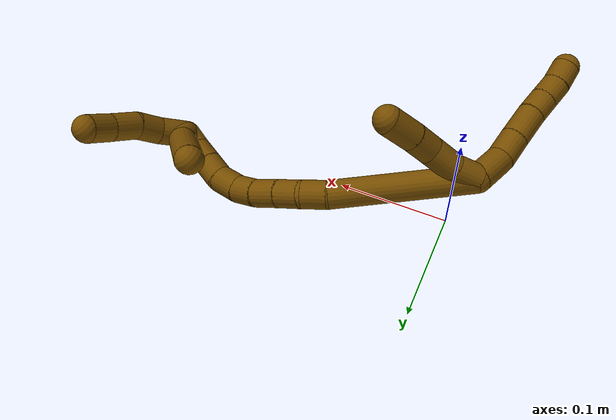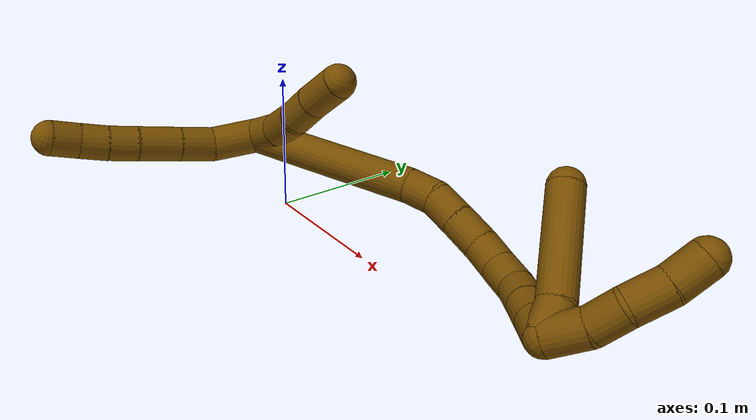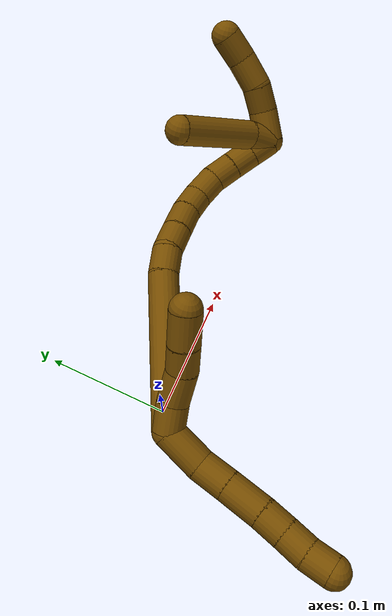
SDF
<sdf version="1.7">
 <world name="default">
  <model name="12">
   <static>0</static>
   <link name="12">
    <collision name="collision-cylinder-e_1_2_8">
     <pose>-0.003582 -0.015489 -0.005577 1.91642 -0.214246 -0.303673</pose>
     <geometry><cylinder><radius>0.0125</radius><length>0.033696</length></cylinder></geometry>
     <surface>
      <friction><ode><mu>1.16</mu><mu2>1.16</mu2><slip1>0</slip1><slip2>0</slip2></ode></friction>
      <contact><ode><kp>1e+06</kp><kd>1</kd><max_vel>0</max_vel><min_depth>0.001</min_depth></ode></contact>
     </surface>
    </collision>
    <visual name="visual-cylinder-e_1_2_8">
     <pose>-0.003582 -0.015489 -0.005577 1.91642 -0.214246 -0.303673</pose>
     <geometry><cylinder><radius>0.0125</radius><length>0.033696</length></cylinder></geometry>
     <material><ambient>0.466667 0.301961 0 1</ambient></material>
    </visual>
    <collision name="collision-cylinder-e_2_8_9">
     <pose>-0.010504 -0.043057 -0.011547 1.60328 -0.269605 -0.278393</pose>
     <geometry><cylinder><radius>0.0125</radius><length>0.025075</length></cylinder></geometry>
     <surface>
      <friction><ode><mu>1.16</mu><mu2>1.16</mu2><slip1>0</slip1><slip2>0</slip2></ode></friction>
      <contact><ode><kp>1e+06</kp><kd>1</kd><max_vel>0</max_vel><min_depth>0.001</min_depth></ode></contact>
     </surface>
    </collision>
    <visual name="visual-cylinder-e_2_8_9">
     <pose>-0.010504 -0.043057 -0.011547 1.60328 -0.269605 -0.278393</pose>
     <geometry><cylinder><radius>0.0125</radius><length>0.025075</length></cylinder></geometry>
     <material><ambient>0.466667 0.301961 0 1</ambient></material>
    </visual>
    <collision name="collision-cylinder-e_3_9_10">
     <pose>-0.01805 -0.069735 -0.012602 1.61616 -0.280252 -0.29308</pose>
     <geometry><cylinder><radius>0.0125</radius><length>0.030417</length></cylinder></geometry>
     <surface>
      <friction><ode><mu>1.16</mu><mu2>1.16</mu2><slip1>0</slip1><slip2>0</slip2></ode></friction>
      <contact><ode><kp>1e+06</kp><kd>1</kd><max_vel>0</max_vel><min_depth>0.001</min_depth></ode></contact>
     </surface>
    </collision>
    <visual name="visual-cylinder-e_3_9_10">
     <pose>-0.01805 -0.069735 -0.012602 1.61616 -0.280252 -0.29308</pose>
     <geometry><cylinder><radius>0.0125</radius><length>0.030417</length></cylinder></geometry>
     <material><ambient>0.466667 0.301961 0 1</ambient></material>
    </visual>
    <collision name="collision-cylinder-e_4_10_11">
     <pose>-0.025439 -0.09402 -0.014193 1.6663 -0.316143 -0.347269</pose>
     <geometry><cylinder><radius>0.0125</radius><length>0.020473</length></cylinder></geometry>
     <surface>
      <friction><ode><mu>1.16</mu><mu2>1.16</mu2><slip1>0</slip1><slip2>0</slip2></ode></friction>
      <contact><ode><kp>1e+06</kp><kd>1</kd><max_vel>0</max_vel><min_depth>0.001</min_depth></ode></contact>
     </surface>
    </collision>
    <visual name="visual-cylinder-e_4_10_11">
     <pose>-0.025439 -0.09402 -0.014193 1.6663 -0.316143 -0.347269</pose>
     <geometry><cylinder><radius>0.0125</radius><length>0.020473</length></cylinder></geometry>
     <material><ambient>0.466667 0.301961 0 1</ambient></material>
    </visual>
    <collision name="collision-cylinder-e_5_11_12">
     <pose>-0.032313 -0.113062 -0.015576 1.61945 -0.375388 -0.393643</pose>
     <geometry><cylinder><radius>0.0125</radius><length>0.020139</length></cylinder></geometry>
     <surface>
      <friction><ode><mu>1.16</mu><mu2>1.16</mu2><slip1>0</slip1><slip2>0</slip2></ode></friction>
      <contact><ode><kp>1e+06</kp><kd>1</kd><max_vel>0</max_vel><min_depth>0.001</min_depth></ode></contact>
     </surface>
    </collision>
    <visual name="visual-cylinder-e_5_11_12">
     <pose>-0.032313 -0.113062 -0.015576 1.61945 -0.375388 -0.393643</pose>
     <geometry><cylinder><radius>0.0125</radius><length>0.020139</length></cylinder></geometry>
     <material><ambient>0.466667 0.301961 0 1</ambient></material>
    </visual>
    <collision name="collision-cylinder-e_6_12_6">
     <pose>-0.038914 -0.132054 -0.015185 1.48317 -0.292211 -0.267971</pose>
     <geometry><cylinder><radius>0.0125</radius><length>0.0202</length></cylinder></geometry>
     <surface>
      <friction><ode><mu>1.16</mu><mu2>1.16</mu2><slip1>0</slip1><slip2>0</slip2></ode></friction>
      <contact><ode><kp>1e+06</kp><kd>1</kd><max_vel>0</max_vel><min_depth>0.001</min_depth></ode></contact>
     </surface>
    </collision>
    <visual name="visual-cylinder-e_6_12_6">
     <pose>-0.038914 -0.132054 -0.015185 1.48317 -0.292211 -0.267971</pose>
     <geometry><cylinder><radius>0.0125</radius><length>0.0202</length></cylinder></geometry>
     <material><ambient>0.466667 0.301961 0 1</ambient></material>
    </visual>
    <collision name="collision-cylinder-e_1_2_13">
     <pose>0.005573 0.002212 0.009931 -0.219178 0.501139 -0.056309</pose>
     <geometry><cylinder><radius>0.0125</radius><length>0.023201</length></cylinder></geometry>
     <surface>
      <friction><ode><mu>1.16</mu><mu2>1.16</mu2><slip1>0</slip1><slip2>0</slip2></ode></friction>
      <contact><ode><kp>1e+06</kp><kd>1</kd><max_vel>0</max_vel><min_depth>0.001</min_depth></ode></contact>
     </surface>
    </collision>
    <visual name="visual-cylinder-e_1_2_13">
     <pose>0.005573 0.002212 0.009931 -0.219178 0.501139 -0.056309</pose>
     <geometry><cylinder><radius>0.0125</radius><length>0.023201</length></cylinder></geometry>
     <material><ambient>0.466667 0.301961 0 1</ambient></material>
    </visual>
    <collision name="collision-cylinder-e_2_13_14">
     <pose>0.015424 0.005054 0.032574 -0.049475 0.324198 -0.008092</pose>
     <geometry><cylinder><radius>0.0125</radius><length>0.026856</length></cylinder></geometry>
     <surface>
      <friction><ode><mu>1.16</mu><mu2>1.16</mu2><slip1>0</slip1><slip2>0</slip2></ode></friction>
      <contact><ode><kp>1e+06</kp><kd>1</kd><max_vel>0</max_vel><min_depth>0.001</min_depth></ode></contact>
     </surface>
    </collision>
    <visual name="visual-cylinder-e_2_13_14">
     <pose>0.015424 0.005054 0.032574 -0.049475 0.324198 -0.008092</pose>
     <geometry><cylinder><radius>0.0125</radius><length>0.026856</length></cylinder></geometry>
     <material><ambient>0.466667 0.301961 0 1</ambient></material>
    </visual>
    <collision name="collision-cylinder-e_3_14_15">
     <pose>0.021316 0.007888 0.055907 -0.204677 0.147761 -0.015202</pose>
     <geometry><cylinder><radius>0.0125</radius><length>0.021932</length></cylinder></geometry>
     <surface>
      <friction><ode><mu>1.16</mu><mu2>1.16</mu2><slip1>0</slip1><slip2>0</slip2></ode></friction>
      <contact><ode><kp>1e+06</kp><kd>1</kd><max_vel>0</max_vel><min_depth>0.001</min_depth></ode></contact>
     </surface>
    </collision>
    <visual name="visual-cylinder-e_3_14_15">
     <pose>0.021316 0.007888 0.055907 -0.204677 0.147761 -0.015202</pose>
     <geometry><cylinder><radius>0.0125</radius><length>0.021932</length></cylinder></geometry>
     <material><ambient>0.466667 0.301961 0 1</ambient></material>
    </visual>
    <collision name="collision-cylinder-e_4_15_5">
     <pose>0.025746 0.013202 0.07989 -0.228635 0.202427 -0.023321</pose>
     <geometry><cylinder><radius>0.0125</radius><length>0.028012</length></cylinder></geometry>
     <surface>
      <friction><ode><mu>1.16</mu><mu2>1.16</mu2><slip1>0</slip1><slip2>0</slip2></ode></friction>
      <contact><ode><kp>1e+06</kp><kd>1</kd><max_vel>0</max_vel><min_depth>0.001</min_depth></ode></contact>
     </surface>
    </collision>
    <visual name="visual-cylinder-e_4_15_5">
     <pose>0.025746 0.013202 0.07989 -0.228635 0.202427 -0.023321</pose>
     <geometry><cylinder><radius>0.0125</radius><length>0.028012</length></cylinder></geometry>
     <material><ambient>0.466667 0.301961 0 1</ambient></material>
    </visual>
    <collision name="collision-cylinder-e_1_2_16">
     <pose>0.049589 0.027124 0.027992 -0.769667 0.904641 -0.388655</pose>
     <geometry><cylinder><radius>0.0125</radius><length>0.126148</length></cylinder></geometry>
     <surface>
      <friction><ode><mu>1.16</mu><mu2>1.16</mu2><slip1>0</slip1><slip2>0</slip2></ode></friction>
      <contact><ode><kp>1e+06</kp><kd>1</kd><max_vel>0</max_vel><min_depth>0.001</min_depth></ode></contact>
     </surface>
    </collision>
    <visual name="visual-cylinder-e_1_2_16">
     <pose>0.049589 0.027124 0.027992 -0.769667 0.904641 -0.388655</pose>
     <geometry><cylinder><radius>0.0125</radius><length>0.126148</length></cylinder></geometry>
     <material><ambient>0.466667 0.301961 0 1</ambient></material>
    </visual>
    <collision name="collision-cylinder-e_2_16_17">
     <pose>0.108633 0.057184 0.060981 -0.530953 1.02088 -0.302168</pose>
     <geometry><cylinder><radius>0.0125</radius><length>0.022179</length></cylinder></geometry>
     <surface>
      <friction><ode><mu>1.16</mu><mu2>1.16</mu2><slip1>0</slip1><slip2>0</slip2></ode></friction>
      <contact><ode><kp>1e+06</kp><kd>1</kd><max_vel>0</max_vel><min_depth>0.001</min_depth></ode></contact>
     </surface>
    </collision>
    <visual name="visual-cylinder-e_2_16_17">
     <pose>0.108633 0.057184 0.060981 -0.530953 1.02088 -0.302168</pose>
     <geometry><cylinder><radius>0.0125</radius><length>0.022179</length></cylinder></geometry>
     <material><ambient>0.466667 0.301961 0 1</ambient></material>
    </visual>
    <collision name="collision-cylinder-e_3_17_18">
     <pose>0.129085 0.060818 0.068651 -0.256247 1.32466 -0.200262</pose>
     <geometry><cylinder><radius>0.0125</radius><length>0.022679</length></cylinder></geometry>
     <surface>
      <friction><ode><mu>1.16</mu><mu2>1.16</mu2><slip1>0</slip1><slip2>0</slip2></ode></friction>
      <contact><ode><kp>1e+06</kp><kd>1</kd><max_vel>0</max_vel><min_depth>0.001</min_depth></ode></contact>
     </surface>
    </collision>
    <visual name="visual-cylinder-e_3_17_18">
     <pose>0.129085 0.060818 0.068651 -0.256247 1.32466 -0.200262</pose>
     <geometry><cylinder><radius>0.0125</radius><length>0.022679</length></cylinder></geometry>
     <material><ambient>0.466667 0.301961 0 1</ambient></material>
    </visual>
    <collision name="collision-cylinder-e_4_18_19">
     <pose>0.151922 0.062243 0.073839 -0.280362 1.35318 -0.225665</pose>
     <geometry><cylinder><radius>0.0125</radius><length>0.024251</length></cylinder></geometry>
     <surface>
      <friction><ode><mu>1.16</mu><mu2>1.16</mu2><slip1>0</slip1><slip2>0</slip2></ode></friction>
      <contact><ode><kp>1e+06</kp><kd>1</kd><max_vel>0</max_vel><min_depth>0.001</min_depth></ode></contact>
     </surface>
    </collision>
    <visual name="visual-cylinder-e_4_18_19">
     <pose>0.151922 0.062243 0.073839 -0.280362 1.35318 -0.225665</pose>
     <geometry><cylinder><radius>0.0125</radius><length>0.024251</length></cylinder></geometry>
     <material><ambient>0.466667 0.301961 0 1</ambient></material>
    </visual>
    <collision name="collision-cylinder-e_5_19_20">
     <pose>0.173664 0.0619 0.079236 0.354957 1.26995 0.262776</pose>
     <geometry><cylinder><radius>0.0125</radius><length>0.020737</length></cylinder></geometry>
     <surface>
      <friction><ode><mu>1.16</mu><mu2>1.16</mu2><slip1>0</slip1><slip2>0</slip2></ode></friction>
      <contact><ode><kp>1e+06</kp><kd>1</kd><max_vel>0</max_vel><min_depth>0.001</min_depth></ode></contact>
     </surface>
    </collision>
    <visual name="visual-cylinder-e_5_19_20">
     <pose>0.173664 0.0619 0.079236 0.354957 1.26995 0.262776</pose>
     <geometry><cylinder><radius>0.0125</radius><length>0.020737</length></cylinder></geometry>
     <material><ambient>0.466667 0.301961 0 1</ambient></material>
    </visual>
    <collision name="collision-cylinder-e_6_20_21">
     <pose>0.193354 0.057796 0.087311 0.528913 1.01968 0.300549</pose>
     <geometry><cylinder><radius>0.0125</radius><length>0.022975</length></cylinder></geometry>
     <surface>
      <friction><ode><mu>1.16</mu><mu2>1.16</mu2><slip1>0</slip1><slip2>0</slip2></ode></friction>
      <contact><ode><kp>1e+06</kp><kd>1</kd><max_vel>0</max_vel><min_depth>0.001</min_depth></ode></contact>
     </surface>
    </collision>
    <visual name="visual-cylinder-e_6_20_21">
     <pose>0.193354 0.057796 0.087311 0.528913 1.01968 0.300549</pose>
     <geometry><cylinder><radius>0.0125</radius><length>0.022975</length></cylinder></geometry>
     <material><ambient>0.466667 0.301961 0 1</ambient></material>
    </visual>
    <collision name="collision-cylinder-e_7_21_22">
     <pose>0.210124 0.049369 0.098075 0.769025 0.733265 0.308304</pose>
     <geometry><cylinder><radius>0.0125</radius><length>0.020869</length></cylinder></geometry>
     <surface>
      <friction><ode><mu>1.16</mu><mu2>1.16</mu2><slip1>0</slip1><slip2>0</slip2></ode></friction>
      <contact><ode><kp>1e+06</kp><kd>1</kd><max_vel>0</max_vel><min_depth>0.001</min_depth></ode></contact>
     </surface>
    </collision>
    <visual name="visual-cylinder-e_7_21_22">
     <pose>0.210124 0.049369 0.098075 0.769025 0.733265 0.308304</pose>
     <geometry><cylinder><radius>0.0125</radius><length>0.020869</length></cylinder></geometry>
     <material><ambient>0.466667 0.301961 0 1</ambient></material>
    </visual>
    <collision name="collision-cylinder-e_8_22_23">
     <pose>0.223911 0.03875 0.108786 0.793921 0.748094 0.326183</pose>
     <geometry><cylinder><radius>0.0125</radius><length>0.020004</length></cylinder></geometry>
     <surface>
      <friction><ode><mu>1.16</mu><mu2>1.16</mu2><slip1>0</slip1><slip2>0</slip2></ode></friction>
      <contact><ode><kp>1e+06</kp><kd>1</kd><max_vel>0</max_vel><min_depth>0.001</min_depth></ode></contact>
     </surface>
    </collision>
    <visual name="visual-cylinder-e_8_22_23">
     <pose>0.223911 0.03875 0.108786 0.793921 0.748094 0.326183</pose>
     <geometry><cylinder><radius>0.0125</radius><length>0.020004</length></cylinder></geometry>
     <material><ambient>0.466667 0.301961 0 1</ambient></material>
    </visual>
    <collision name="collision-cylinder-e_9_23_1">
     <pose>0.2371 0.028005 0.119438 0.785782 0.686035 0.293888</pose>
     <geometry><cylinder><radius>0.0125</radius><length>0.020159</length></cylinder></geometry>
     <surface>
      <friction><ode><mu>1.16</mu><mu2>1.16</mu2><slip1>0</slip1><slip2>0</slip2></ode></friction>
      <contact><ode><kp>1e+06</kp><kd>1</kd><max_vel>0</max_vel><min_depth>0.001</min_depth></ode></contact>
     </surface>
    </collision>
    <visual name="visual-cylinder-e_9_23_1">
     <pose>0.2371 0.028005 0.119438 0.785782 0.686035 0.293888</pose>
     <geometry><cylinder><radius>0.0125</radius><length>0.020159</length></cylinder></geometry>
     <material><ambient>0.466667 0.301961 0 1</ambient></material>
    </visual>
    <collision name="collision-cylinder-e_1_1_24">
     <pose>0.236645 0.030711 0.128148 -1.19992 -0.659559 0.460001</pose>
     <geometry><cylinder><radius>0.0125</radius><length>0.022327</length></cylinder></geometry>
     <surface>
      <friction><ode><mu>1.16</mu><mu2>1.16</mu2><slip1>0</slip1><slip2>0</slip2></ode></friction>
      <contact><ode><kp>1e+06</kp><kd>1</kd><max_vel>0</max_vel><min_depth>0.001</min_depth></ode></contact>
     </surface>
    </collision>
    <visual name="visual-cylinder-e_1_1_24">
     <pose>0.236645 0.030711 0.128148 -1.19992 -0.659559 0.460001</pose>
     <geometry><cylinder><radius>0.0125</radius><length>0.022327</length></cylinder></geometry>
     <material><ambient>0.466667 0.301961 0 1</ambient></material>
    </visual>
    <collision name="collision-cylinder-e_2_24_4">
     <pose>0.199319 0.061827 0.138747 -1.25811 -0.902637 0.678135</pose>
     <geometry><cylinder><radius>0.0125</radius><length>0.077673</length></cylinder></geometry>
     <surface>
      <friction><ode><mu>1.16</mu><mu2>1.16</mu2><slip1>0</slip1><slip2>0</slip2></ode></friction>
      <contact><ode><kp>1e+06</kp><kd>1</kd><max_vel>0</max_vel><min_depth>0.001</min_depth></ode></contact>
     </surface>
    </collision>
    <visual name="visual-cylinder-e_2_24_4">
     <pose>0.199319 0.061827 0.138747 -1.25811 -0.902637 0.678135</pose>
     <geometry><cylinder><radius>0.0125</radius><length>0.077673</length></cylinder></geometry>
     <material><ambient>0.466667 0.301961 0 1</ambient></material>
    </visual>
    <collision name="collision-cylinder-e_1_1_25">
     <pose>0.247889 0.029491 0.135723 -0.576409 0.33022 -0.098716</pose>
     <geometry><cylinder><radius>0.0125</radius><length>0.027165</length></cylinder></geometry>
     <surface>
      <friction><ode><mu>1.16</mu><mu2>1.16</mu2><slip1>0</slip1><slip2>0</slip2></ode></friction>
      <contact><ode><kp>1e+06</kp><kd>1</kd><max_vel>0</max_vel><min_depth>0.001</min_depth></ode></contact>
     </surface>
    </collision>
    <visual name="visual-cylinder-e_1_1_25">
     <pose>0.247889 0.029491 0.135723 -0.576409 0.33022 -0.098716</pose>
     <geometry><cylinder><radius>0.0125</radius><length>0.027165</length></cylinder></geometry>
     <material><ambient>0.466667 0.301961 0 1</ambient></material>
    </visual>
    <collision name="collision-cylinder-e_2_25_26">
     <pose>0.252907 0.042439 0.15624 -0.547841 0.05372 -0.015098</pose>
     <geometry><cylinder><radius>0.0125</radius><length>0.022862</length></cylinder></geometry>
     <surface>
      <friction><ode><mu>1.16</mu><mu2>1.16</mu2><slip1>0</slip1><slip2>0</slip2></ode></friction>
      <contact><ode><kp>1e+06</kp><kd>1</kd><max_vel>0</max_vel><min_depth>0.001</min_depth></ode></contact>
     </surface>
    </collision>
    <visual name="visual-cylinder-e_2_25_26">
     <pose>0.252907 0.042439 0.15624 -0.547841 0.05372 -0.015098</pose>
     <geometry><cylinder><radius>0.0125</radius><length>0.022862</length></cylinder></geometry>
     <material><ambient>0.466667 0.301961 0 1</ambient></material>
    </visual>
    <collision name="collision-cylinder-e_3_26_27">
     <pose>0.254519 0.057972 0.174756 -0.829841 0.076649 -0.033777</pose>
     <geometry><cylinder><radius>0.0125</radius><length>0.026067</length></cylinder></geometry>
     <surface>
      <friction><ode><mu>1.16</mu><mu2>1.16</mu2><slip1>0</slip1><slip2>0</slip2></ode></friction>
      <contact><ode><kp>1e+06</kp><kd>1</kd><max_vel>0</max_vel><min_depth>0.001</min_depth></ode></contact>
     </surface>
    </collision>
    <visual name="visual-cylinder-e_3_26_27">
     <pose>0.254519 0.057972 0.174756 -0.829841 0.076649 -0.033777</pose>
     <geometry><cylinder><radius>0.0125</radius><length>0.026067</length></cylinder></geometry>
     <material><ambient>0.466667 0.301961 0 1</ambient></material>
    </visual>
    <collision name="collision-cylinder-e_4_27_3">
     <pose>0.25426 0.076275 0.191612 -0.822851 -0.105318 0.045988</pose>
     <geometry><cylinder><radius>0.0125</radius><length>0.023906</length></cylinder></geometry>
     <surface>
      <friction><ode><mu>1.16</mu><mu2>1.16</mu2><slip1>0</slip1><slip2>0</slip2></ode></friction>
      <contact><ode><kp>1e+06</kp><kd>1</kd><max_vel>0</max_vel><min_depth>0.001</min_depth></ode></contact>
     </surface>
    </collision>
    <visual name="visual-cylinder-e_4_27_3">
     <pose>0.25426 0.076275 0.191612 -0.822851 -0.105318 0.045988</pose>
     <geometry><cylinder><radius>0.0125</radius><length>0.023906</length></cylinder></geometry>
     <material><ambient>0.466667 0.301961 0 1</ambient></material>
    </visual>
    <collision name="collision-sphere-3">
     <pose>0.253004 0.084989 0.199696 0 -0 0</pose>
     <geometry><sphere><radius>0.0125</radius></sphere></geometry>
     <surface>
      <friction><ode><mu>1.16</mu><mu2>1.16</mu2><slip1>0</slip1><slip2>0</slip2></ode></friction>
      <contact><ode><kp>1e+06</kp><kd>1</kd><max_vel>0</max_vel><min_depth>0.001</min_depth></ode></contact>
     </surface>
    </collision>
    <visual name="visual-sphere-3">
     <pose>0.253004 0.084989 0.199696 0 -0 0</pose>
     <geometry><sphere><radius>0.0125</radius></sphere></geometry>
     <material><ambient>0.466667 0.301961 0 1</ambient></material>
    </visual>
    <collision name="collision-sphere-27">
     <pose>0.255517 0.067561 0.183527 0 -0 0</pose>
     <geometry><sphere><radius>0.0125</radius></sphere></geometry>
     <surface>
      <friction><ode><mu>1.16</mu><mu2>1.16</mu2><slip1>0</slip1><slip2>0</slip2></ode></friction>
      <contact><ode><kp>1e+06</kp><kd>1</kd><max_vel>0</max_vel><min_depth>0.001</min_depth></ode></contact>
     </surface>
    </collision>
    <visual name="visual-sphere-27">
     <pose>0.255517 0.067561 0.183527 0 -0 0</pose>
     <geometry><sphere><radius>0.0125</radius></sphere></geometry>
     <material><ambient>0.466667 0.301961 0 1</ambient></material>
    </visual>
    <collision name="collision-sphere-26">
     <pose>0.253521 0.048384 0.165984 0 -0 0</pose>
     <geometry><sphere><radius>0.0125</radius></sphere></geometry>
     <surface>
      <friction><ode><mu>1.16</mu><mu2>1.16</mu2><slip1>0</slip1><slip2>0</slip2></ode></friction>
      <contact><ode><kp>1e+06</kp><kd>1</kd><max_vel>0</max_vel><min_depth>0.001</min_depth></ode></contact>
     </surface>
    </collision>
    <visual name="visual-sphere-26">
     <pose>0.253521 0.048384 0.165984 0 -0 0</pose>
     <geometry><sphere><radius>0.0125</radius></sphere></geometry>
     <material><ambient>0.466667 0.301961 0 1</ambient></material>
    </visual>
    <collision name="collision-sphere-25">
     <pose>0.252293 0.036494 0.146496 0 -0 0</pose>
     <geometry><sphere><radius>0.0125</radius></sphere></geometry>
     <surface>
      <friction><ode><mu>1.16</mu><mu2>1.16</mu2><slip1>0</slip1><slip2>0</slip2></ode></friction>
      <contact><ode><kp>1e+06</kp><kd>1</kd><max_vel>0</max_vel><min_depth>0.001</min_depth></ode></contact>
     </surface>
    </collision>
    <visual name="visual-sphere-25">
     <pose>0.252293 0.036494 0.146496 0 -0 0</pose>
     <geometry><sphere><radius>0.0125</radius></sphere></geometry>
     <material><ambient>0.466667 0.301961 0 1</ambient></material>
    </visual>
    <collision name="collision-sphere-4">
     <pose>0.168833 0.084721 0.146148 0 -0 0</pose>
     <geometry><sphere><radius>0.0125</radius></sphere></geometry>
     <surface>
      <friction><ode><mu>1.16</mu><mu2>1.16</mu2><slip1>0</slip1><slip2>0</slip2></ode></friction>
      <contact><ode><kp>1e+06</kp><kd>1</kd><max_vel>0</max_vel><min_depth>0.001</min_depth></ode></contact>
     </surface>
    </collision>
    <visual name="visual-sphere-4">
     <pose>0.168833 0.084721 0.146148 0 -0 0</pose>
     <geometry><sphere><radius>0.0125</radius></sphere></geometry>
     <material><ambient>0.466667 0.301961 0 1</ambient></material>
    </visual>
    <collision name="collision-sphere-24">
     <pose>0.229804 0.038933 0.131345 0 -0 0</pose>
     <geometry><sphere><radius>0.0125</radius></sphere></geometry>
     <surface>
      <friction><ode><mu>1.16</mu><mu2>1.16</mu2><slip1>0</slip1><slip2>0</slip2></ode></friction>
      <contact><ode><kp>1e+06</kp><kd>1</kd><max_vel>0</max_vel><min_depth>0.001</min_depth></ode></contact>
     </surface>
    </collision>
    <visual name="visual-sphere-24">
     <pose>0.229804 0.038933 0.131345 0 -0 0</pose>
     <geometry><sphere><radius>0.0125</radius></sphere></geometry>
     <material><ambient>0.466667 0.301961 0 1</ambient></material>
    </visual>
    <collision name="collision-sphere-1">
     <pose>0.243485 0.022488 0.12495 0 -0 0</pose>
     <geometry><sphere><radius>0.0125</radius></sphere></geometry>
     <surface>
      <friction><ode><mu>1.16</mu><mu2>1.16</mu2><slip1>0</slip1><slip2>0</slip2></ode></friction>
      <contact><ode><kp>1e+06</kp><kd>1</kd><max_vel>0</max_vel><min_depth>0.001</min_depth></ode></contact>
     </surface>
    </collision>
    <visual name="visual-sphere-1">
     <pose>0.243485 0.022488 0.12495 0 -0 0</pose>
     <geometry><sphere><radius>0.0125</radius></sphere></geometry>
     <material><ambient>0.466667 0.301961 0 1</ambient></material>
    </visual>
    <collision name="collision-sphere-23">
     <pose>0.230715 0.033522 0.113925 0 -0 0</pose>
     <geometry><sphere><radius>0.0125</radius></sphere></geometry>
     <surface>
      <friction><ode><mu>1.16</mu><mu2>1.16</mu2><slip1>0</slip1><slip2>0</slip2></ode></friction>
      <contact><ode><kp>1e+06</kp><kd>1</kd><max_vel>0</max_vel><min_depth>0.001</min_depth></ode></contact>
     </surface>
    </collision>
    <visual name="visual-sphere-23">
     <pose>0.230715 0.033522 0.113925 0 -0 0</pose>
     <geometry><sphere><radius>0.0125</radius></sphere></geometry>
     <material><ambient>0.466667 0.301961 0 1</ambient></material>
    </visual>
    <collision name="collision-sphere-22">
     <pose>0.217108 0.043978 0.103646 0 -0 0</pose>
     <geometry><sphere><radius>0.0125</radius></sphere></geometry>
     <surface>
      <friction><ode><mu>1.16</mu><mu2>1.16</mu2><slip1>0</slip1><slip2>0</slip2></ode></friction>
      <contact><ode><kp>1e+06</kp><kd>1</kd><max_vel>0</max_vel><min_depth>0.001</min_depth></ode></contact>
     </surface>
    </collision>
    <visual name="visual-sphere-22">
     <pose>0.217108 0.043978 0.103646 0 -0 0</pose>
     <geometry><sphere><radius>0.0125</radius></sphere></geometry>
     <material><ambient>0.466667 0.301961 0 1</ambient></material>
    </visual>
    <collision name="collision-sphere-21">
     <pose>0.20314 0.054761 0.092504 0 -0 0</pose>
     <geometry><sphere><radius>0.0125</radius></sphere></geometry>
     <surface>
      <friction><ode><mu>1.16</mu><mu2>1.16</mu2><slip1>0</slip1><slip2>0</slip2></ode></friction>
      <contact><ode><kp>1e+06</kp><kd>1</kd><max_vel>0</max_vel><min_depth>0.001</min_depth></ode></contact>
     </surface>
    </collision>
    <visual name="visual-sphere-21">
     <pose>0.20314 0.054761 0.092504 0 -0 0</pose>
     <geometry><sphere><radius>0.0125</radius></sphere></geometry>
     <material><ambient>0.466667 0.301961 0 1</ambient></material>
    </visual>
    <collision name="collision-sphere-12">
     <pose>-0.036005 -0.12242 -0.016032 0 -0 0</pose>
     <geometry><sphere><radius>0.0125</radius></sphere></geometry>
     <surface>
      <friction><ode><mu>1.16</mu><mu2>1.16</mu2><slip1>0</slip1><slip2>0</slip2></ode></friction>
      <contact><ode><kp>1e+06</kp><kd>1</kd><max_vel>0</max_vel><min_depth>0.001</min_depth></ode></contact>
     </surface>
    </collision>
    <visual name="visual-sphere-12">
     <pose>-0.036005 -0.12242 -0.016032 0 -0 0</pose>
     <geometry><sphere><radius>0.0125</radius></sphere></geometry>
     <material><ambient>0.466667 0.301961 0 1</ambient></material>
    </visual>
    <collision name="collision-sphere-11">
     <pose>-0.028621 -0.103705 -0.01512 0 -0 0</pose>
     <geometry><sphere><radius>0.0125</radius></sphere></geometry>
     <surface>
      <friction><ode><mu>1.16</mu><mu2>1.16</mu2><slip1>0</slip1><slip2>0</slip2></ode></friction>
      <contact><ode><kp>1e+06</kp><kd>1</kd><max_vel>0</max_vel><min_depth>0.001</min_depth></ode></contact>
     </surface>
    </collision>
    <visual name="visual-sphere-11">
     <pose>-0.028621 -0.103705 -0.01512 0 -0 0</pose>
     <geometry><sphere><radius>0.0125</radius></sphere></geometry>
     <material><ambient>0.466667 0.301961 0 1</ambient></material>
    </visual>
    <collision name="collision-sphere-10">
     <pose>-0.022256 -0.084335 -0.013265 0 -0 0</pose>
     <geometry><sphere><radius>0.0125</radius></sphere></geometry>
     <surface>
      <friction><ode><mu>1.16</mu><mu2>1.16</mu2><slip1>0</slip1><slip2>0</slip2></ode></friction>
      <contact><ode><kp>1e+06</kp><kd>1</kd><max_vel>0</max_vel><min_depth>0.001</min_depth></ode></contact>
     </surface>
    </collision>
    <visual name="visual-sphere-10">
     <pose>-0.022256 -0.084335 -0.013265 0 -0 0</pose>
     <geometry><sphere><radius>0.0125</radius></sphere></geometry>
     <material><ambient>0.466667 0.301961 0 1</ambient></material>
    </visual>
    <collision name="collision-sphere-9">
     <pose>-0.013843 -0.055135 -0.01194 0 -0 0</pose>
     <geometry><sphere><radius>0.0125</radius></sphere></geometry>
     <surface>
      <friction><ode><mu>1.16</mu><mu2>1.16</mu2><slip1>0</slip1><slip2>0</slip2></ode></friction>
      <contact><ode><kp>1e+06</kp><kd>1</kd><max_vel>0</max_vel><min_depth>0.001</min_depth></ode></contact>
     </surface>
    </collision>
    <visual name="visual-sphere-9">
     <pose>-0.013843 -0.055135 -0.01194 0 -0 0</pose>
     <geometry><sphere><radius>0.0125</radius></sphere></geometry>
     <material><ambient>0.466667 0.301961 0 1</ambient></material>
    </visual>
    <collision name="collision-sphere-2">
     <geometry><sphere><radius>0.0125</radius></sphere></geometry>
     <surface>
      <friction><ode><mu>1.16</mu><mu2>1.16</mu2><slip1>0</slip1><slip2>0</slip2></ode></friction>
      <contact><ode><kp>1e+06</kp><kd>1</kd><max_vel>0</max_vel><min_depth>0.001</min_depth></ode></contact>
     </surface>
    </collision>
    <visual name="visual-sphere-2">
     <geometry><sphere><radius>0.0125</radius></sphere></geometry>
     <material><ambient>0.466667 0.301961 0 1</ambient></material>
    </visual>
    <collision name="collision-sphere-19">
     <pose>0.163761 0.062967 0.076355 0 -0 0</pose>
     <geometry><sphere><radius>0.0125</radius></sphere></geometry>
     <surface>
      <friction><ode><mu>1.16</mu><mu2>1.16</mu2><slip1>0</slip1><slip2>0</slip2></ode></friction>
      <contact><ode><kp>1e+06</kp><kd>1</kd><max_vel>0</max_vel><min_depth>0.001</min_depth></ode></contact>
     </surface>
    </collision>
    <visual name="visual-sphere-19">
     <pose>0.163761 0.062967 0.076355 0 -0 0</pose>
     <geometry><sphere><radius>0.0125</radius></sphere></geometry>
     <material><ambient>0.466667 0.301961 0 1</ambient></material>
    </visual>
    <collision name="collision-sphere-8">
     <pose>-0.007164 -0.030979 -0.011155 0 -0 0</pose>
     <geometry><sphere><radius>0.0125</radius></sphere></geometry>
     <surface>
      <friction><ode><mu>1.16</mu><mu2>1.16</mu2><slip1>0</slip1><slip2>0</slip2></ode></friction>
      <contact><ode><kp>1e+06</kp><kd>1</kd><max_vel>0</max_vel><min_depth>0.001</min_depth></ode></contact>
     </surface>
    </collision>
    <visual name="visual-sphere-8">
     <pose>-0.007164 -0.030979 -0.011155 0 -0 0</pose>
     <geometry><sphere><radius>0.0125</radius></sphere></geometry>
     <material><ambient>0.466667 0.301961 0 1</ambient></material>
    </visual>
    <collision name="collision-sphere-6">
     <pose>-0.041824 -0.141689 -0.014339 0 -0 0</pose>
     <geometry><sphere><radius>0.0125</radius></sphere></geometry>
     <surface>
      <friction><ode><mu>1.16</mu><mu2>1.16</mu2><slip1>0</slip1><slip2>0</slip2></ode></friction>
      <contact><ode><kp>1e+06</kp><kd>1</kd><max_vel>0</max_vel><min_depth>0.001</min_depth></ode></contact>
     </surface>
    </collision>
    <visual name="visual-sphere-6">
     <pose>-0.041824 -0.141689 -0.014339 0 -0 0</pose>
     <geometry><sphere><radius>0.0125</radius></sphere></geometry>
     <material><ambient>0.466667 0.301961 0 1</ambient></material>
    </visual>
    <collision name="collision-sphere-13">
     <pose>0.011146 0.004424 0.019862 0 -0 0</pose>
     <geometry><sphere><radius>0.0125</radius></sphere></geometry>
     <surface>
      <friction><ode><mu>1.16</mu><mu2>1.16</mu2><slip1>0</slip1><slip2>0</slip2></ode></friction>
      <contact><ode><kp>1e+06</kp><kd>1</kd><max_vel>0</max_vel><min_depth>0.001</min_depth></ode></contact>
     </surface>
    </collision>
    <visual name="visual-sphere-13">
     <pose>0.011146 0.004424 0.019862 0 -0 0</pose>
     <geometry><sphere><radius>0.0125</radius></sphere></geometry>
     <material><ambient>0.466667 0.301961 0 1</ambient></material>
    </visual>
    <collision name="collision-sphere-14">
     <pose>0.019701 0.005683 0.045287 0 -0 0</pose>
     <geometry><sphere><radius>0.0125</radius></sphere></geometry>
     <surface>
      <friction><ode><mu>1.16</mu><mu2>1.16</mu2><slip1>0</slip1><slip2>0</slip2></ode></friction>
      <contact><ode><kp>1e+06</kp><kd>1</kd><max_vel>0</max_vel><min_depth>0.001</min_depth></ode></contact>
     </surface>
    </collision>
    <visual name="visual-sphere-14">
     <pose>0.019701 0.005683 0.045287 0 -0 0</pose>
     <geometry><sphere><radius>0.0125</radius></sphere></geometry>
     <material><ambient>0.466667 0.301961 0 1</ambient></material>
    </visual>
    <collision name="collision-sphere-15">
     <pose>0.02293 0.010092 0.066527 0 -0 0</pose>
     <geometry><sphere><radius>0.0125</radius></sphere></geometry>
     <surface>
      <friction><ode><mu>1.16</mu><mu2>1.16</mu2><slip1>0</slip1><slip2>0</slip2></ode></friction>
      <contact><ode><kp>1e+06</kp><kd>1</kd><max_vel>0</max_vel><min_depth>0.001</min_depth></ode></contact>
     </surface>
    </collision>
    <visual name="visual-sphere-15">
     <pose>0.02293 0.010092 0.066527 0 -0 0</pose>
     <geometry><sphere><radius>0.0125</radius></sphere></geometry>
     <material><ambient>0.466667 0.301961 0 1</ambient></material>
    </visual>
    <collision name="collision-sphere-5">
     <pose>0.028562 0.016311 0.093252 0 -0 0</pose>
     <geometry><sphere><radius>0.0125</radius></sphere></geometry>
     <surface>
      <friction><ode><mu>1.16</mu><mu2>1.16</mu2><slip1>0</slip1><slip2>0</slip2></ode></friction>
      <contact><ode><kp>1e+06</kp><kd>1</kd><max_vel>0</max_vel><min_depth>0.001</min_depth></ode></contact>
     </surface>
    </collision>
    <visual name="visual-sphere-5">
     <pose>0.028562 0.016311 0.093252 0 -0 0</pose>
     <geometry><sphere><radius>0.0125</radius></sphere></geometry>
     <material><ambient>0.466667 0.301961 0 1</ambient></material>
    </visual>
    <collision name="collision-sphere-16">
     <pose>0.099178 0.054249 0.055983 0 -0 0</pose>
     <geometry><sphere><radius>0.0125</radius></sphere></geometry>
     <surface>
      <friction><ode><mu>1.16</mu><mu2>1.16</mu2><slip1>0</slip1><slip2>0</slip2></ode></friction>
      <contact><ode><kp>1e+06</kp><kd>1</kd><max_vel>0</max_vel><min_depth>0.001</min_depth></ode></contact>
     </surface>
    </collision>
    <visual name="visual-sphere-16">
     <pose>0.099178 0.054249 0.055983 0 -0 0</pose>
     <geometry><sphere><radius>0.0125</radius></sphere></geometry>
     <material><ambient>0.466667 0.301961 0 1</ambient></material>
    </visual>
    <collision name="collision-sphere-17">
     <pose>0.118087 0.060118 0.065978 0 -0 0</pose>
     <geometry><sphere><radius>0.0125</radius></sphere></geometry>
     <surface>
      <friction><ode><mu>1.16</mu><mu2>1.16</mu2><slip1>0</slip1><slip2>0</slip2></ode></friction>
      <contact><ode><kp>1e+06</kp><kd>1</kd><max_vel>0</max_vel><min_depth>0.001</min_depth></ode></contact>
     </surface>
    </collision>
    <visual name="visual-sphere-17">
     <pose>0.118087 0.060118 0.065978 0 -0 0</pose>
     <geometry><sphere><radius>0.0125</radius></sphere></geometry>
     <material><ambient>0.466667 0.301961 0 1</ambient></material>
    </visual>
    <collision name="collision-sphere-18">
     <pose>0.140082 0.061519 0.071324 0 -0 0</pose>
     <geometry><sphere><radius>0.0125</radius></sphere></geometry>
     <surface>
      <friction><ode><mu>1.16</mu><mu2>1.16</mu2><slip1>0</slip1><slip2>0</slip2></ode></friction>
      <contact><ode><kp>1e+06</kp><kd>1</kd><max_vel>0</max_vel><min_depth>0.001</min_depth></ode></contact>
     </surface>
    </collision>
    <visual name="visual-sphere-18">
     <pose>0.140082 0.061519 0.071324 0 -0 0</pose>
     <geometry><sphere><radius>0.0125</radius></sphere></geometry>
     <material><ambient>0.466667 0.301961 0 1</ambient></material>
    </visual>
    <collision name="collision-sphere-20">
     <pose>0.183567 0.060832 0.082117 0 -0 0</pose>
     <geometry><sphere><radius>0.0125</radius></sphere></geometry>
     <surface>
      <friction><ode><mu>1.16</mu><mu2>1.16</mu2><slip1>0</slip1><slip2>0</slip2></ode></friction>
      <contact><ode><kp>1e+06</kp><kd>1</kd><max_vel>0</max_vel><min_depth>0.001</min_depth></ode></contact>
     </surface>
    </collision>
    <visual name="visual-sphere-20">
     <pose>0.183567 0.060832 0.082117 0 -0 0</pose>
     <geometry><sphere><radius>0.0125</radius></sphere></geometry>
     <material><ambient>0.466667 0.301961 0 1</ambient></material>
    </visual>
    <inertial>
     <pose>0.109066 0.017723 0.068455 0 -0 0</pose>
     <mass>0.75</mass>
     <inertia>
      <ixx>0.000144</ixx>
      <ixy>0</ixy>
      <ixz>0</ixz>
      <iyy>0.000184</iyy>
      <iyz>0</iyz>
      <izz>-0.00018</izz>
     </inertia>
    </inertial>
   </link>
   <pose>-0.016745 -0.013418 0.054101 -0.055253 0.602547 -0.003525</pose>
  </model>
 </world>
</sdf>
